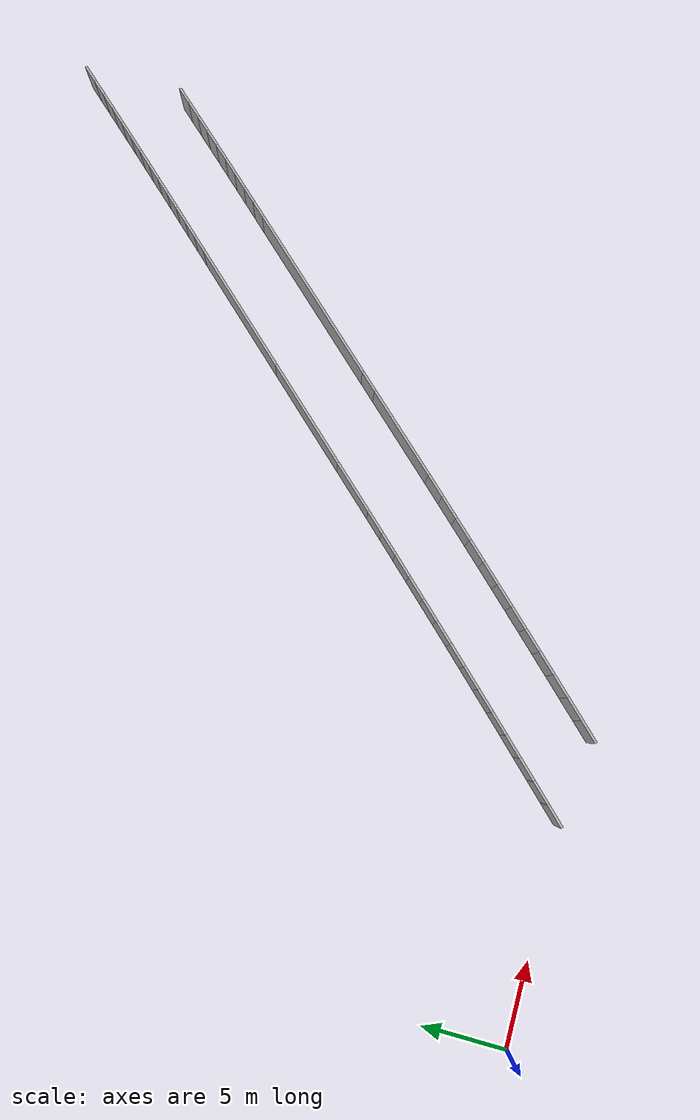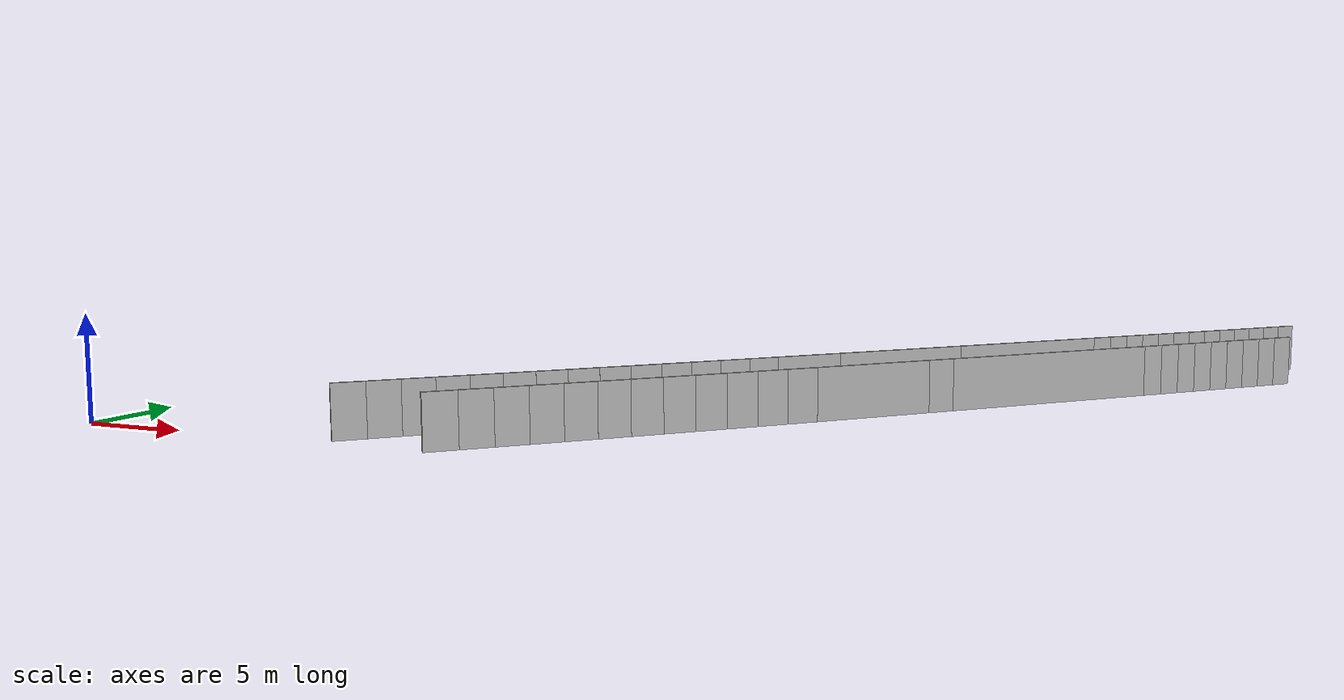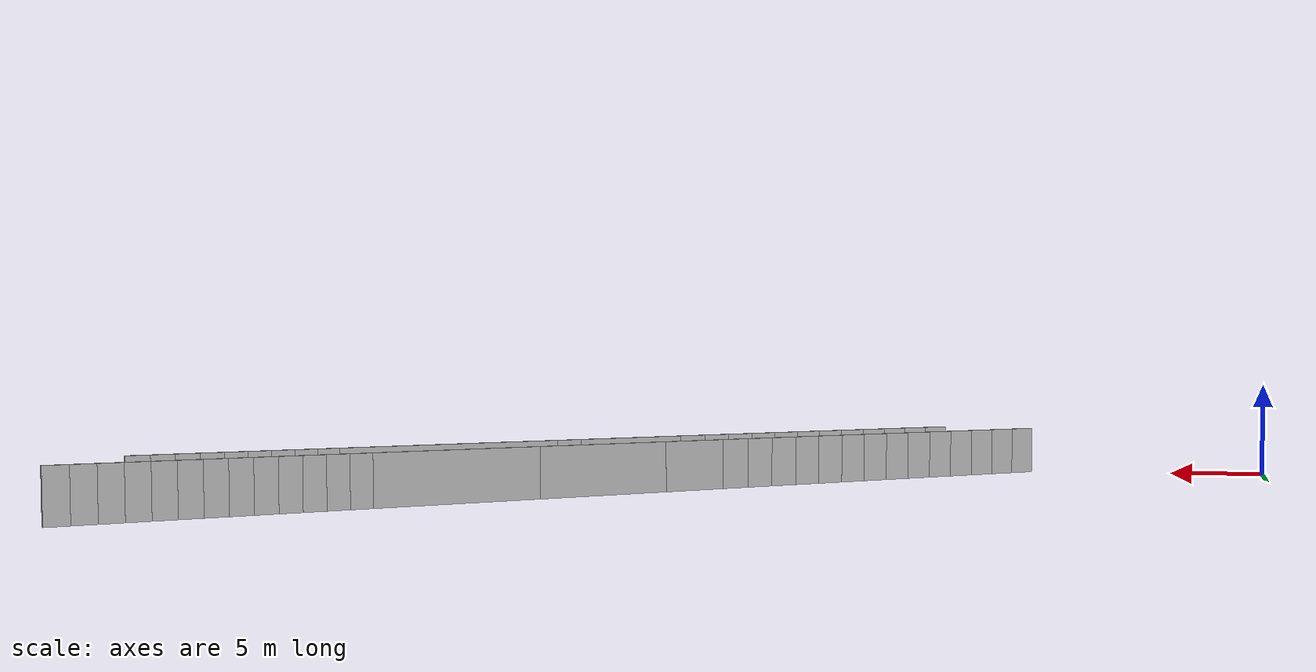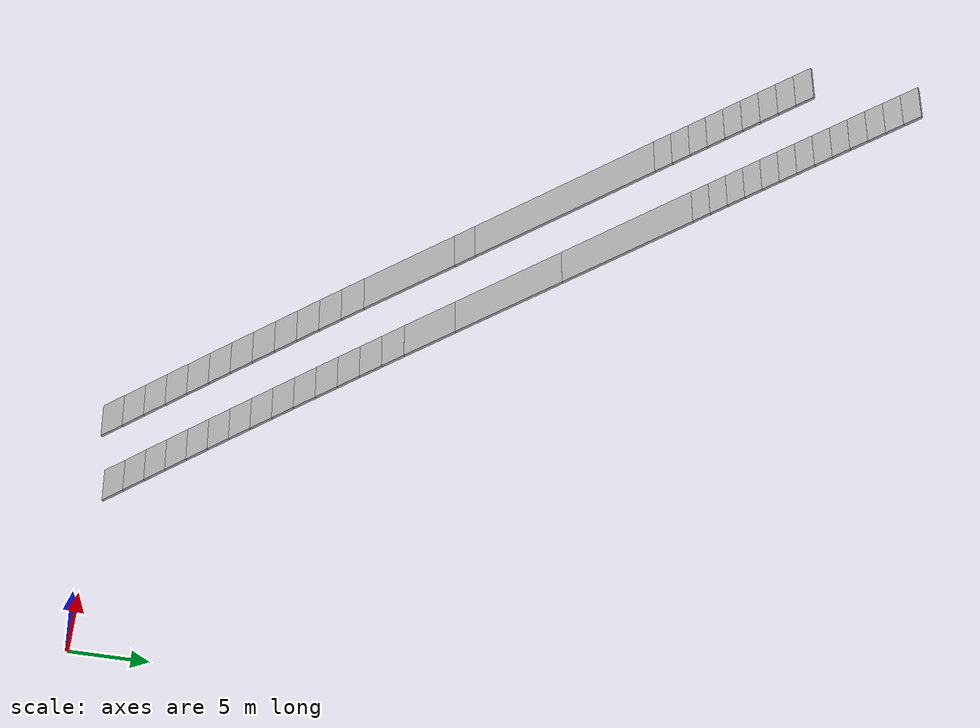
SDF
<?xml version="1.0" ?>
<sdf version="1.6">
  <model name="sps_3909">
    <pose frame="">0 0 0 0 -0 0</pose>
    <static>1</static>
    <self_collide>0</self_collide>
    <allow_auto_disable>0</allow_auto_disable>
    <link name="Wall243">
      <kinematic>0</kinematic>
      <gravity>1</gravity>
      <self_collide>0</self_collide>
      <collision name="collision">
        <geometry>
          <box>
            <size>8.3183 0.15 2.5</size>
          </box>
        </geometry>
        <pose frame="">0 0 0 0 -0 0</pose>
      </collision>
      <visual name="visual">
        <geometry>
          <box>
            <size>8.3183 0.15 2.5</size>
          </box>
        </geometry>
        <pose frame="">0 0 0 0 -0 0</pose>
        <cast_shadows>1</cast_shadows>
        <transparency>0.0</transparency>
      </visual>
      <pose frame="">37.3127 26.0104 1.25 0 0 -2.32351</pose>
    </link>
    <link name="Wall244">
      <kinematic>0</kinematic>
      <gravity>1</gravity>
      <self_collide>0</self_collide>
      <collision name="collision">
        <geometry>
          <box>
            <size>6.96301 0.15 2.5</size>
          </box>
        </geometry>
        <pose frame="">0 0 0 0 -0 0</pose>
      </collision>
      <visual name="visual">
        <geometry>
          <box>
            <size>6.96301 0.15 2.5</size>
          </box>
        </geometry>
        <pose frame="">0 0 0 0 -0 0</pose>
        <cast_shadows>1</cast_shadows>
        <transparency>0.0</transparency>
      </visual>
      <pose frame="">32.0894 20.434 1.25 0 0 -2.32351</pose>
    </link>
    <link name="Wall245">
      <kinematic>0</kinematic>
      <gravity>1</gravity>
      <self_collide>0</self_collide>
      <collision name="collision">
        <geometry>
          <box>
            <size>3.39064 0.15 2.5</size>
          </box>
        </geometry>
        <pose frame="">0 0 0 0 -0 0</pose>
      </collision>
      <visual name="visual">
        <geometry>
          <box>
            <size>3.39064 0.15 2.5</size>
          </box>
        </geometry>
        <pose frame="">0 0 0 0 -0 0</pose>
        <cast_shadows>1</cast_shadows>
        <transparency>0.0</transparency>
      </visual>
      <pose frame="">28.5504 16.6558 1.25 0 0 -2.32351</pose>
    </link>
    <link name="Wall309">
      <kinematic>0</kinematic>
      <gravity>1</gravity>
      <self_collide>0</self_collide>
      <collision name="collision">
        <geometry>
          <box>
            <size>5.94722 0.15 2.5</size>
          </box>
        </geometry>
        <pose frame="">0 0 0 0 -0 0</pose>
      </collision>
      <visual name="visual">
        <geometry>
          <box>
            <size>5.94722 0.15 2.5</size>
          </box>
        </geometry>
        <pose frame="">0 0 0 0 -0 0</pose>
        <cast_shadows>1</cast_shadows>
        <transparency>0.0</transparency>
      </visual>
      <pose frame="">32.4366 14.7482 1.25 0 -0 0.818091</pose>
    </link>
    <link name="Wall310">
      <kinematic>0</kinematic>
      <gravity>1</gravity>
      <self_collide>0</self_collide>
      <collision name="collision">
        <geometry>
          <box>
            <size>1.33544 0.15 2.5</size>
          </box>
        </geometry>
        <pose frame="">0 0 0 0 -0 0</pose>
      </collision>
      <visual name="visual">
        <geometry>
          <box>
            <size>1.33544 0.15 2.5</size>
          </box>
        </geometry>
        <pose frame="">0 0 0 0 -0 0</pose>
        <cast_shadows>1</cast_shadows>
        <transparency>0.0</transparency>
      </visual>
      <pose frame="">34.9259 17.4058 1.25 0 -0 0.818091</pose>
    </link>
    <link name="Wall311">
      <kinematic>0</kinematic>
      <gravity>1</gravity>
      <self_collide>0</self_collide>
      <collision name="collision">
        <geometry>
          <box>
            <size>11.3992 0.15 2.5</size>
          </box>
        </geometry>
        <pose frame="">0 0 0 0 -0 0</pose>
      </collision>
      <visual name="visual">
        <geometry>
          <box>
            <size>11.3992 0.15 2.5</size>
          </box>
        </geometry>
        <pose frame="">0 0 0 0 -0 0</pose>
        <cast_shadows>1</cast_shadows>
        <transparency>0.0</transparency>
      </visual>
      <pose frame="">39.2787 22.0529 1.25 0 -0 0.818091</pose>
    </link>
    <link name="Wall3377">
      <kinematic>0</kinematic>
      <gravity>1</gravity>
      <self_collide>0</self_collide>
      <collision name="collision">
        <geometry>
          <box>
            <size>1.07595 0.15 2.5</size>
          </box>
        </geometry>
        <pose frame="">0 0 0 0 -0 0</pose>
      </collision>
      <visual name="visual">
        <geometry>
          <box>
            <size>1.07595 0.15 2.5</size>
          </box>
        </geometry>
        <pose frame="">0 0 0 0 -0 0</pose>
        <cast_shadows>1</cast_shadows>
        <transparency>0.0</transparency>
      </visual>
      <pose frame="">40.5239 29.4385 1.25 0 -0 0.817935</pose>
    </link>
    <link name="Wall3378">
      <kinematic>0</kinematic>
      <gravity>1</gravity>
      <self_collide>0</self_collide>
      <collision name="collision">
        <geometry>
          <box>
            <size>1.07582 0.15 2.5</size>
          </box>
        </geometry>
        <pose frame="">0 0 0 0 -0 0</pose>
      </collision>
      <visual name="visual">
        <geometry>
          <box>
            <size>1.07582 0.15 2.5</size>
          </box>
        </geometry>
        <pose frame="">0 0 0 0 -0 0</pose>
        <cast_shadows>1</cast_shadows>
        <transparency>0.0</transparency>
      </visual>
      <pose frame="">41.259 30.2241 1.25 0 -0 0.819223</pose>
    </link>
    <link name="Wall3379">
      <kinematic>0</kinematic>
      <gravity>1</gravity>
      <self_collide>0</self_collide>
      <collision name="collision">
        <geometry>
          <box>
            <size>1.07616 0.15 2.5</size>
          </box>
        </geometry>
        <pose frame="">0 0 0 0 -0 0</pose>
      </collision>
      <visual name="visual">
        <geometry>
          <box>
            <size>1.07616 0.15 2.5</size>
          </box>
        </geometry>
        <pose frame="">0 0 0 0 -0 0</pose>
        <cast_shadows>1</cast_shadows>
        <transparency>0.0</transparency>
      </visual>
      <pose frame="">41.9932 31.0106 1.25 0 -0 0.820216</pose>
    </link>
    <link name="Wall3380">
      <kinematic>0</kinematic>
      <gravity>1</gravity>
      <self_collide>0</self_collide>
      <collision name="collision">
        <geometry>
          <box>
            <size>1.07594 0.15 2.5</size>
          </box>
        </geometry>
        <pose frame="">0 0 0 0 -0 0</pose>
      </collision>
      <visual name="visual">
        <geometry>
          <box>
            <size>1.07594 0.15 2.5</size>
          </box>
        </geometry>
        <pose frame="">0 0 0 0 -0 0</pose>
        <cast_shadows>1</cast_shadows>
        <transparency>0.0</transparency>
      </visual>
      <pose frame="">42.7268 31.7979 1.25 0 -0 0.821266</pose>
    </link>
    <link name="Wall3381">
      <kinematic>0</kinematic>
      <gravity>1</gravity>
      <self_collide>0</self_collide>
      <collision name="collision">
        <geometry>
          <box>
            <size>1.07598 0.15 2.5</size>
          </box>
        </geometry>
        <pose frame="">0 0 0 0 -0 0</pose>
      </collision>
      <visual name="visual">
        <geometry>
          <box>
            <size>1.07598 0.15 2.5</size>
          </box>
        </geometry>
        <pose frame="">0 0 0 0 -0 0</pose>
        <cast_shadows>1</cast_shadows>
        <transparency>0.0</transparency>
      </visual>
      <pose frame="">43.4594 32.5859 1.25 0 -0 0.822389</pose>
    </link>
    <link name="Wall3382">
      <kinematic>0</kinematic>
      <gravity>1</gravity>
      <self_collide>0</self_collide>
      <collision name="collision">
        <geometry>
          <box>
            <size>1.07599 0.15 2.5</size>
          </box>
        </geometry>
        <pose frame="">0 0 0 0 -0 0</pose>
      </collision>
      <visual name="visual">
        <geometry>
          <box>
            <size>1.07599 0.15 2.5</size>
          </box>
        </geometry>
        <pose frame="">0 0 0 0 -0 0</pose>
        <cast_shadows>1</cast_shadows>
        <transparency>0.0</transparency>
      </visual>
      <pose frame="">44.1911 33.3748 1.25 0 -0 0.823633</pose>
    </link>
    <link name="Wall3383">
      <kinematic>0</kinematic>
      <gravity>1</gravity>
      <self_collide>0</self_collide>
      <collision name="collision">
        <geometry>
          <box>
            <size>1.07608 0.15 2.5</size>
          </box>
        </geometry>
        <pose frame="">0 0 0 0 -0 0</pose>
      </collision>
      <visual name="visual">
        <geometry>
          <box>
            <size>1.07608 0.15 2.5</size>
          </box>
        </geometry>
        <pose frame="">0 0 0 0 -0 0</pose>
        <cast_shadows>1</cast_shadows>
        <transparency>0.0</transparency>
      </visual>
      <pose frame="">44.9219 34.1646 1.25 0 -0 0.824713</pose>
    </link>
    <link name="Wall3384">
      <kinematic>0</kinematic>
      <gravity>1</gravity>
      <self_collide>0</self_collide>
      <collision name="collision">
        <geometry>
          <box>
            <size>1.07596 0.15 2.5</size>
          </box>
        </geometry>
        <pose frame="">0 0 0 0 -0 0</pose>
      </collision>
      <visual name="visual">
        <geometry>
          <box>
            <size>1.07596 0.15 2.5</size>
          </box>
        </geometry>
        <pose frame="">0 0 0 0 -0 0</pose>
        <cast_shadows>1</cast_shadows>
        <transparency>0.0</transparency>
      </visual>
      <pose frame="">45.6518 34.9552 1.25 0 -0 0.825922</pose>
    </link>
    <link name="Wall3385">
      <kinematic>0</kinematic>
      <gravity>1</gravity>
      <self_collide>0</self_collide>
      <collision name="collision">
        <geometry>
          <box>
            <size>1.07584 0.15 2.5</size>
          </box>
        </geometry>
        <pose frame="">0 0 0 0 -0 0</pose>
      </collision>
      <visual name="visual">
        <geometry>
          <box>
            <size>1.07584 0.15 2.5</size>
          </box>
        </geometry>
        <pose frame="">0 0 0 0 -0 0</pose>
        <cast_shadows>1</cast_shadows>
        <transparency>0.0</transparency>
      </visual>
      <pose frame="">46.3806 35.7466 1.25 0 -0 0.827051</pose>
    </link>
    <link name="Wall3386">
      <kinematic>0</kinematic>
      <gravity>1</gravity>
      <self_collide>0</self_collide>
      <collision name="collision">
        <geometry>
          <box>
            <size>1.07609 0.15 2.5</size>
          </box>
        </geometry>
        <pose frame="">0 0 0 0 -0 0</pose>
      </collision>
      <visual name="visual">
        <geometry>
          <box>
            <size>1.07609 0.15 2.5</size>
          </box>
        </geometry>
        <pose frame="">0 0 0 0 -0 0</pose>
        <cast_shadows>1</cast_shadows>
        <transparency>0.0</transparency>
      </visual>
      <pose frame="">47.1088 36.5388 1.25 0 -0 0.827964</pose>
    </link>
    <link name="Wall3387">
      <kinematic>0</kinematic>
      <gravity>1</gravity>
      <self_collide>0</self_collide>
      <collision name="collision">
        <geometry>
          <box>
            <size>1.07616 0.15 2.5</size>
          </box>
        </geometry>
        <pose frame="">0 0 0 0 -0 0</pose>
      </collision>
      <visual name="visual">
        <geometry>
          <box>
            <size>1.07616 0.15 2.5</size>
          </box>
        </geometry>
        <pose frame="">0 0 0 0 -0 0</pose>
        <cast_shadows>1</cast_shadows>
        <transparency>0.0</transparency>
      </visual>
      <pose frame="">47.8361 37.3319 1.25 0 -0 0.829326</pose>
    </link>
    <link name="Wall3388">
      <kinematic>0</kinematic>
      <gravity>1</gravity>
      <self_collide>0</self_collide>
      <collision name="collision">
        <geometry>
          <box>
            <size>1.07586 0.15 2.5</size>
          </box>
        </geometry>
        <pose frame="">0 0 0 0 -0 0</pose>
      </collision>
      <visual name="visual">
        <geometry>
          <box>
            <size>1.07586 0.15 2.5</size>
          </box>
        </geometry>
        <pose frame="">0 0 0 0 -0 0</pose>
        <cast_shadows>1</cast_shadows>
        <transparency>0.0</transparency>
      </visual>
      <pose frame="">48.5624 38.1258 1.25 0 -0 0.830382</pose>
    </link>
    <link name="Wall3389">
      <kinematic>0</kinematic>
      <gravity>1</gravity>
      <self_collide>0</self_collide>
      <collision name="collision">
        <geometry>
          <box>
            <size>1.07605 0.15 2.5</size>
          </box>
        </geometry>
        <pose frame="">0 0 0 0 -0 0</pose>
      </collision>
      <visual name="visual">
        <geometry>
          <box>
            <size>1.07605 0.15 2.5</size>
          </box>
        </geometry>
        <pose frame="">0 0 0 0 -0 0</pose>
        <cast_shadows>1</cast_shadows>
        <transparency>0.0</transparency>
      </visual>
      <pose frame="">49.2877 38.9205 1.25 0 -0 0.831539</pose>
    </link>
    <link name="Wall4165">
      <kinematic>0</kinematic>
      <gravity>1</gravity>
      <self_collide>0</self_collide>
      <collision name="collision">
        <geometry>
          <box>
            <size>1.4966 0.15 2.5</size>
          </box>
        </geometry>
        <pose frame="">0 0 0 0 -0 0</pose>
      </collision>
      <visual name="visual">
        <geometry>
          <box>
            <size>1.4966 0.15 2.5</size>
          </box>
        </geometry>
        <pose frame="">0 0 0 0 -0 0</pose>
        <cast_shadows>1</cast_shadows>
        <transparency>0.0</transparency>
      </visual>
      <pose frame="">13.3711 0.872878 1.25 0 -0 0.793127</pose>
    </link>
    <link name="Wall4166">
      <kinematic>0</kinematic>
      <gravity>1</gravity>
      <self_collide>0</self_collide>
      <collision name="collision">
        <geometry>
          <box>
            <size>1.49641 0.15 2.5</size>
          </box>
        </geometry>
        <pose frame="">0 0 0 0 -0 0</pose>
      </collision>
      <visual name="visual">
        <geometry>
          <box>
            <size>1.49641 0.15 2.5</size>
          </box>
        </geometry>
        <pose frame="">0 0 0 0 -0 0</pose>
        <cast_shadows>1</cast_shadows>
        <transparency>0.0</transparency>
      </visual>
      <pose frame="">14.4202 1.94008 1.25 0 -0 0.794772</pose>
    </link>
    <link name="Wall4167">
      <kinematic>0</kinematic>
      <gravity>1</gravity>
      <self_collide>0</self_collide>
      <collision name="collision">
        <geometry>
          <box>
            <size>1.49665 0.15 2.5</size>
          </box>
        </geometry>
        <pose frame="">0 0 0 0 -0 0</pose>
      </collision>
      <visual name="visual">
        <geometry>
          <box>
            <size>1.49665 0.15 2.5</size>
          </box>
        </geometry>
        <pose frame="">0 0 0 0 -0 0</pose>
        <cast_shadows>1</cast_shadows>
        <transparency>0.0</transparency>
      </visual>
      <pose frame="">15.4676 3.00889 1.25 0 -0 0.796183</pose>
    </link>
    <link name="Wall4168">
      <kinematic>0</kinematic>
      <gravity>1</gravity>
      <self_collide>0</self_collide>
      <collision name="collision">
        <geometry>
          <box>
            <size>1.49646 0.15 2.5</size>
          </box>
        </geometry>
        <pose frame="">0 0 0 0 -0 0</pose>
      </collision>
      <visual name="visual">
        <geometry>
          <box>
            <size>1.49646 0.15 2.5</size>
          </box>
        </geometry>
        <pose frame="">0 0 0 0 -0 0</pose>
        <cast_shadows>1</cast_shadows>
        <transparency>0.0</transparency>
      </visual>
      <pose frame="">16.5134 4.07939 1.25 0 -0 0.797944</pose>
    </link>
    <link name="Wall4169">
      <kinematic>0</kinematic>
      <gravity>1</gravity>
      <self_collide>0</self_collide>
      <collision name="collision">
        <geometry>
          <box>
            <size>1.49666 0.15 2.5</size>
          </box>
        </geometry>
        <pose frame="">0 0 0 0 -0 0</pose>
      </collision>
      <visual name="visual">
        <geometry>
          <box>
            <size>1.49666 0.15 2.5</size>
          </box>
        </geometry>
        <pose frame="">0 0 0 0 -0 0</pose>
        <cast_shadows>1</cast_shadows>
        <transparency>0.0</transparency>
      </visual>
      <pose frame="">17.5575 5.15156 1.25 0 -0 0.799384</pose>
    </link>
    <link name="Wall4170">
      <kinematic>0</kinematic>
      <gravity>1</gravity>
      <self_collide>0</self_collide>
      <collision name="collision">
        <geometry>
          <box>
            <size>1.49644 0.15 2.5</size>
          </box>
        </geometry>
        <pose frame="">0 0 0 0 -0 0</pose>
      </collision>
      <visual name="visual">
        <geometry>
          <box>
            <size>1.49644 0.15 2.5</size>
          </box>
        </geometry>
        <pose frame="">0 0 0 0 -0 0</pose>
        <cast_shadows>1</cast_shadows>
        <transparency>0.0</transparency>
      </visual>
      <pose frame="">18.5999 6.22539 1.25 0 -0 0.801117</pose>
    </link>
    <link name="Wall4171">
      <kinematic>0</kinematic>
      <gravity>1</gravity>
      <self_collide>0</self_collide>
      <collision name="collision">
        <geometry>
          <box>
            <size>1.49648 0.15 2.5</size>
          </box>
        </geometry>
        <pose frame="">0 0 0 0 -0 0</pose>
      </collision>
      <visual name="visual">
        <geometry>
          <box>
            <size>1.49648 0.15 2.5</size>
          </box>
        </geometry>
        <pose frame="">0 0 0 0 -0 0</pose>
        <cast_shadows>1</cast_shadows>
        <transparency>0.0</transparency>
      </visual>
      <pose frame="">19.6406 7.3008 1.25 0 -0 0.802559</pose>
    </link>
    <link name="Wall4172">
      <kinematic>0</kinematic>
      <gravity>1</gravity>
      <self_collide>0</self_collide>
      <collision name="collision">
        <geometry>
          <box>
            <size>1.49648 0.15 2.5</size>
          </box>
        </geometry>
        <pose frame="">0 0 0 0 -0 0</pose>
      </collision>
      <visual name="visual">
        <geometry>
          <box>
            <size>1.49648 0.15 2.5</size>
          </box>
        </geometry>
        <pose frame="">0 0 0 0 -0 0</pose>
        <cast_shadows>1</cast_shadows>
        <transparency>0.0</transparency>
      </visual>
      <pose frame="">20.6796 8.37779 1.25 0 -0 0.804145</pose>
    </link>
    <link name="Wall4173">
      <kinematic>0</kinematic>
      <gravity>1</gravity>
      <self_collide>0</self_collide>
      <collision name="collision">
        <geometry>
          <box>
            <size>1.49657 0.15 2.5</size>
          </box>
        </geometry>
        <pose frame="">0 0 0 0 -0 0</pose>
      </collision>
      <visual name="visual">
        <geometry>
          <box>
            <size>1.49657 0.15 2.5</size>
          </box>
        </geometry>
        <pose frame="">0 0 0 0 -0 0</pose>
        <cast_shadows>1</cast_shadows>
        <transparency>0.0</transparency>
      </visual>
      <pose frame="">21.7168 9.4565 1.25 0 -0 0.805788</pose>
    </link>
    <link name="Wall4174">
      <kinematic>0</kinematic>
      <gravity>1</gravity>
      <self_collide>0</self_collide>
      <collision name="collision">
        <geometry>
          <box>
            <size>1.49657 0.15 2.5</size>
          </box>
        </geometry>
        <pose frame="">0 0 0 0 -0 0</pose>
      </collision>
      <visual name="visual">
        <geometry>
          <box>
            <size>1.49657 0.15 2.5</size>
          </box>
        </geometry>
        <pose frame="">0 0 0 0 -0 0</pose>
        <cast_shadows>1</cast_shadows>
        <transparency>0.0</transparency>
      </visual>
      <pose frame="">22.7525 10.5369 1.25 0 -0 0.807317</pose>
    </link>
    <link name="Wall4175">
      <kinematic>0</kinematic>
      <gravity>1</gravity>
      <self_collide>0</self_collide>
      <collision name="collision">
        <geometry>
          <box>
            <size>1.49668 0.15 2.5</size>
          </box>
        </geometry>
        <pose frame="">0 0 0 0 -0 0</pose>
      </collision>
      <visual name="visual">
        <geometry>
          <box>
            <size>1.49668 0.15 2.5</size>
          </box>
        </geometry>
        <pose frame="">0 0 0 0 -0 0</pose>
        <cast_shadows>1</cast_shadows>
        <transparency>0.0</transparency>
      </visual>
      <pose frame="">23.7864 11.619 1.25 0 -0 0.809017</pose>
    </link>
    <link name="Wall4176">
      <kinematic>0</kinematic>
      <gravity>1</gravity>
      <self_collide>0</self_collide>
      <collision name="collision">
        <geometry>
          <box>
            <size>1.49643 0.15 2.5</size>
          </box>
        </geometry>
        <pose frame="">0 0 0 0 -0 0</pose>
      </collision>
      <visual name="visual">
        <geometry>
          <box>
            <size>1.49643 0.15 2.5</size>
          </box>
        </geometry>
        <pose frame="">0 0 0 0 -0 0</pose>
        <cast_shadows>1</cast_shadows>
        <transparency>0.0</transparency>
      </visual>
      <pose frame="">24.8185 12.7027 1.25 0 -0 0.81055</pose>
    </link>
    <link name="Wall4177">
      <kinematic>0</kinematic>
      <gravity>1</gravity>
      <self_collide>0</self_collide>
      <collision name="collision">
        <geometry>
          <box>
            <size>1.49632 0.15 2.5</size>
          </box>
        </geometry>
        <pose frame="">0 0 0 0 -0 0</pose>
      </collision>
      <visual name="visual">
        <geometry>
          <box>
            <size>1.49632 0.15 2.5</size>
          </box>
        </geometry>
        <pose frame="">0 0 0 0 -0 0</pose>
        <cast_shadows>1</cast_shadows>
        <transparency>0.0</transparency>
      </visual>
      <pose frame="">25.8487 13.7879 1.25 0 -0 0.812168</pose>
    </link>
    <link name="Wall4178">
      <kinematic>0</kinematic>
      <gravity>1</gravity>
      <self_collide>0</self_collide>
      <collision name="collision">
        <geometry>
          <box>
            <size>1.49655 0.15 2.5</size>
          </box>
        </geometry>
        <pose frame="">0 0 0 0 -0 0</pose>
      </collision>
      <visual name="visual">
        <geometry>
          <box>
            <size>1.49655 0.15 2.5</size>
          </box>
        </geometry>
        <pose frame="">0 0 0 0 -0 0</pose>
        <cast_shadows>1</cast_shadows>
        <transparency>0.0</transparency>
      </visual>
      <pose frame="">26.8774 14.8747 1.25 0 -0 0.813548</pose>
    </link>
    <link name="Wall4179">
      <kinematic>0</kinematic>
      <gravity>1</gravity>
      <self_collide>0</self_collide>
      <collision name="collision">
        <geometry>
          <box>
            <size>1.08074 0.15 2.5</size>
          </box>
        </geometry>
        <pose frame="">0 0 0 0 -0 0</pose>
      </collision>
      <visual name="visual">
        <geometry>
          <box>
            <size>1.08074 0.15 2.5</size>
          </box>
        </geometry>
        <pose frame="">0 0 0 0 -0 0</pose>
        <cast_shadows>1</cast_shadows>
        <transparency>0.0</transparency>
      </visual>
      <pose frame="">43.5446 26.607 1.25 0 -0 0.81783</pose>
    </link>
    <link name="Wall4180">
      <kinematic>0</kinematic>
      <gravity>1</gravity>
      <self_collide>0</self_collide>
      <collision name="collision">
        <geometry>
          <box>
            <size>1.08078 0.15 2.5</size>
          </box>
        </geometry>
        <pose frame="">0 0 0 0 -0 0</pose>
      </collision>
      <visual name="visual">
        <geometry>
          <box>
            <size>1.08078 0.15 2.5</size>
          </box>
        </geometry>
        <pose frame="">0 0 0 0 -0 0</pose>
        <cast_shadows>1</cast_shadows>
        <transparency>0.0</transparency>
      </visual>
      <pose frame="">44.2831 27.3961 1.25 0 -0 0.819187</pose>
    </link>
    <link name="Wall4181">
      <kinematic>0</kinematic>
      <gravity>1</gravity>
      <self_collide>0</self_collide>
      <collision name="collision">
        <geometry>
          <box>
            <size>1.08064 0.15 2.5</size>
          </box>
        </geometry>
        <pose frame="">0 0 0 0 -0 0</pose>
      </collision>
      <visual name="visual">
        <geometry>
          <box>
            <size>1.08064 0.15 2.5</size>
          </box>
        </geometry>
        <pose frame="">0 0 0 0 -0 0</pose>
        <cast_shadows>1</cast_shadows>
        <transparency>0.0</transparency>
      </visual>
      <pose frame="">45.0207 28.186 1.25 0 -0 0.820071</pose>
    </link>
    <link name="Wall4182">
      <kinematic>0</kinematic>
      <gravity>1</gravity>
      <self_collide>0</self_collide>
      <collision name="collision">
        <geometry>
          <box>
            <size>1.08086 0.15 2.5</size>
          </box>
        </geometry>
        <pose frame="">0 0 0 0 -0 0</pose>
      </collision>
      <visual name="visual">
        <geometry>
          <box>
            <size>1.08086 0.15 2.5</size>
          </box>
        </geometry>
        <pose frame="">0 0 0 0 -0 0</pose>
        <cast_shadows>1</cast_shadows>
        <transparency>0.0</transparency>
      </visual>
      <pose frame="">45.7574 28.9767 1.25 0 -0 0.821263</pose>
    </link>
    <link name="Wall4183">
      <kinematic>0</kinematic>
      <gravity>1</gravity>
      <self_collide>0</self_collide>
      <collision name="collision">
        <geometry>
          <box>
            <size>1.08082 0.15 2.5</size>
          </box>
        </geometry>
        <pose frame="">0 0 0 0 -0 0</pose>
      </collision>
      <visual name="visual">
        <geometry>
          <box>
            <size>1.08082 0.15 2.5</size>
          </box>
        </geometry>
        <pose frame="">0 0 0 0 -0 0</pose>
        <cast_shadows>1</cast_shadows>
        <transparency>0.0</transparency>
      </visual>
      <pose frame="">46.4933 29.7683 1.25 0 -0 0.822463</pose>
    </link>
    <link name="Wall4184">
      <kinematic>0</kinematic>
      <gravity>1</gravity>
      <self_collide>0</self_collide>
      <collision name="collision">
        <geometry>
          <box>
            <size>1.0807 0.15 2.5</size>
          </box>
        </geometry>
        <pose frame="">0 0 0 0 -0 0</pose>
      </collision>
      <visual name="visual">
        <geometry>
          <box>
            <size>1.0807 0.15 2.5</size>
          </box>
        </geometry>
        <pose frame="">0 0 0 0 -0 0</pose>
        <cast_shadows>1</cast_shadows>
        <transparency>0.0</transparency>
      </visual>
      <pose frame="">47.2283 30.5607 1.25 0 -0 0.823586</pose>
    </link>
    <link name="Wall4185">
      <kinematic>0</kinematic>
      <gravity>1</gravity>
      <self_collide>0</self_collide>
      <collision name="collision">
        <geometry>
          <box>
            <size>1.08057 0.15 2.5</size>
          </box>
        </geometry>
        <pose frame="">0 0 0 0 -0 0</pose>
      </collision>
      <visual name="visual">
        <geometry>
          <box>
            <size>1.08057 0.15 2.5</size>
          </box>
        </geometry>
        <pose frame="">0 0 0 0 -0 0</pose>
        <cast_shadows>1</cast_shadows>
        <transparency>0.0</transparency>
      </visual>
      <pose frame="">47.9622 31.3539 1.25 0 -0 0.824789</pose>
    </link>
    <link name="Wall4186">
      <kinematic>0</kinematic>
      <gravity>1</gravity>
      <self_collide>0</self_collide>
      <collision name="collision">
        <geometry>
          <box>
            <size>1.08079 0.15 2.5</size>
          </box>
        </geometry>
        <pose frame="">0 0 0 0 -0 0</pose>
      </collision>
      <visual name="visual">
        <geometry>
          <box>
            <size>1.08079 0.15 2.5</size>
          </box>
        </geometry>
        <pose frame="">0 0 0 0 -0 0</pose>
        <cast_shadows>1</cast_shadows>
        <transparency>0.0</transparency>
      </visual>
      <pose frame="">48.6953 32.1479 1.25 0 -0 0.825741</pose>
    </link>
    <link name="Wall4187">
      <kinematic>0</kinematic>
      <gravity>1</gravity>
      <self_collide>0</self_collide>
      <collision name="collision">
        <geometry>
          <box>
            <size>1.08063 0.15 2.5</size>
          </box>
        </geometry>
        <pose frame="">0 0 0 0 -0 0</pose>
      </collision>
      <visual name="visual">
        <geometry>
          <box>
            <size>1.08063 0.15 2.5</size>
          </box>
        </geometry>
        <pose frame="">0 0 0 0 -0 0</pose>
        <cast_shadows>1</cast_shadows>
        <transparency>0.0</transparency>
      </visual>
      <pose frame="">49.4275 32.9428 1.25 0 -0 0.827145</pose>
    </link>
    <link name="Wall7942">
      <kinematic>0</kinematic>
      <gravity>1</gravity>
      <self_collide>0</self_collide>
      <collision name="collision">
        <geometry>
          <box>
            <size>1.50312 0.15 2.5</size>
          </box>
        </geometry>
        <pose frame="">0 0 0 0 -0 0</pose>
      </collision>
      <visual name="visual">
        <geometry>
          <box>
            <size>1.50312 0.15 2.5</size>
          </box>
        </geometry>
        <pose frame="">0 0 0 0 -0 0</pose>
        <cast_shadows>1</cast_shadows>
        <transparency>0.0</transparency>
      </visual>
      <pose frame="">18.4277 0.113692 1.25 0 -0 0.796309</pose>
    </link>
    <link name="Wall7943">
      <kinematic>0</kinematic>
      <gravity>1</gravity>
      <self_collide>0</self_collide>
      <collision name="collision">
        <geometry>
          <box>
            <size>1.50311 0.15 2.5</size>
          </box>
        </geometry>
        <pose frame="">0 0 0 0 -0 0</pose>
      </collision>
      <visual name="visual">
        <geometry>
          <box>
            <size>1.50311 0.15 2.5</size>
          </box>
        </geometry>
        <pose frame="">0 0 0 0 -0 0</pose>
        <cast_shadows>1</cast_shadows>
        <transparency>0.0</transparency>
      </visual>
      <pose frame="">19.478 1.18889 1.25 0 -0 0.797831</pose>
    </link>
    <link name="Wall7944">
      <kinematic>0</kinematic>
      <gravity>1</gravity>
      <self_collide>0</self_collide>
      <collision name="collision">
        <geometry>
          <box>
            <size>1.50323 0.15 2.5</size>
          </box>
        </geometry>
        <pose frame="">0 0 0 0 -0 0</pose>
      </collision>
      <visual name="visual">
        <geometry>
          <box>
            <size>1.50323 0.15 2.5</size>
          </box>
        </geometry>
        <pose frame="">0 0 0 0 -0 0</pose>
        <cast_shadows>1</cast_shadows>
        <transparency>0.0</transparency>
      </visual>
      <pose frame="">20.5268 2.26579 1.25 0 -0 0.799495</pose>
    </link>
    <link name="Wall7945">
      <kinematic>0</kinematic>
      <gravity>1</gravity>
      <self_collide>0</self_collide>
      <collision name="collision">
        <geometry>
          <box>
            <size>1.50322 0.15 2.5</size>
          </box>
        </geometry>
        <pose frame="">0 0 0 0 -0 0</pose>
      </collision>
      <visual name="visual">
        <geometry>
          <box>
            <size>1.50322 0.15 2.5</size>
          </box>
        </geometry>
        <pose frame="">0 0 0 0 -0 0</pose>
        <cast_shadows>1</cast_shadows>
        <transparency>0.0</transparency>
      </visual>
      <pose frame="">21.5738 3.34441 1.25 0 -0 0.801017</pose>
    </link>
    <link name="Wall7946">
      <kinematic>0</kinematic>
      <gravity>1</gravity>
      <self_collide>0</self_collide>
      <collision name="collision">
        <geometry>
          <box>
            <size>1.50308 0.15 2.5</size>
          </box>
        </geometry>
        <pose frame="">0 0 0 0 -0 0</pose>
      </collision>
      <visual name="visual">
        <geometry>
          <box>
            <size>1.50308 0.15 2.5</size>
          </box>
        </geometry>
        <pose frame="">0 0 0 0 -0 0</pose>
        <cast_shadows>1</cast_shadows>
        <transparency>0.0</transparency>
      </visual>
      <pose frame="">22.6191 4.42461 1.25 0 -0 0.802627</pose>
    </link>
    <link name="Wall7947">
      <kinematic>0</kinematic>
      <gravity>1</gravity>
      <self_collide>0</self_collide>
      <collision name="collision">
        <geometry>
          <box>
            <size>1.50313 0.15 2.5</size>
          </box>
        </geometry>
        <pose frame="">0 0 0 0 -0 0</pose>
      </collision>
      <visual name="visual">
        <geometry>
          <box>
            <size>1.50313 0.15 2.5</size>
          </box>
        </geometry>
        <pose frame="">0 0 0 0 -0 0</pose>
        <cast_shadows>1</cast_shadows>
        <transparency>0.0</transparency>
      </visual>
      <pose frame="">23.6626 5.50648 1.25 0 -0 0.804292</pose>
    </link>
    <link name="Wall7948">
      <kinematic>0</kinematic>
      <gravity>1</gravity>
      <self_collide>0</self_collide>
      <collision name="collision">
        <geometry>
          <box>
            <size>1.50309 0.15 2.5</size>
          </box>
        </geometry>
        <pose frame="">0 0 0 0 -0 0</pose>
      </collision>
      <visual name="visual">
        <geometry>
          <box>
            <size>1.50309 0.15 2.5</size>
          </box>
        </geometry>
        <pose frame="">0 0 0 0 -0 0</pose>
        <cast_shadows>1</cast_shadows>
        <transparency>0.0</transparency>
      </visual>
      <pose frame="">24.7044 6.58998 1.25 0 -0 0.805729</pose>
    </link>
    <link name="Wall7949">
      <kinematic>0</kinematic>
      <gravity>1</gravity>
      <self_collide>0</self_collide>
      <collision name="collision">
        <geometry>
          <box>
            <size>1.50296 0.15 2.5</size>
          </box>
        </geometry>
        <pose frame="">0 0 0 0 -0 0</pose>
      </collision>
      <visual name="visual">
        <geometry>
          <box>
            <size>1.50296 0.15 2.5</size>
          </box>
        </geometry>
        <pose frame="">0 0 0 0 -0 0</pose>
        <cast_shadows>1</cast_shadows>
        <transparency>0.0</transparency>
      </visual>
      <pose frame="">25.7445 7.675 1.25 0 -0 0.807339</pose>
    </link>
    <link name="Wall7950">
      <kinematic>0</kinematic>
      <gravity>1</gravity>
      <self_collide>0</self_collide>
      <collision name="collision">
        <geometry>
          <box>
            <size>1.50302 0.15 2.5</size>
          </box>
        </geometry>
        <pose frame="">0 0 0 0 -0 0</pose>
      </collision>
      <visual name="visual">
        <geometry>
          <box>
            <size>1.50302 0.15 2.5</size>
          </box>
        </geometry>
        <pose frame="">0 0 0 0 -0 0</pose>
        <cast_shadows>1</cast_shadows>
        <transparency>0.0</transparency>
      </visual>
      <pose frame="">26.7828 8.7617 1.25 0 -0 0.809004</pose>
    </link>
    <link name="Wall7951">
      <kinematic>0</kinematic>
      <gravity>1</gravity>
      <self_collide>0</self_collide>
      <collision name="collision">
        <geometry>
          <box>
            <size>1.50303 0.15 2.5</size>
          </box>
        </geometry>
        <pose frame="">0 0 0 0 -0 0</pose>
      </collision>
      <visual name="visual">
        <geometry>
          <box>
            <size>1.50303 0.15 2.5</size>
          </box>
        </geometry>
        <pose frame="">0 0 0 0 -0 0</pose>
        <cast_shadows>1</cast_shadows>
        <transparency>0.0</transparency>
      </visual>
      <pose frame="">27.8194 9.85008 1.25 0 -0 0.810526</pose>
    </link>
    <link name="Wall7952">
      <kinematic>0</kinematic>
      <gravity>1</gravity>
      <self_collide>0</self_collide>
      <collision name="collision">
        <geometry>
          <box>
            <size>1.50318 0.15 2.5</size>
          </box>
        </geometry>
        <pose frame="">0 0 0 0 -0 0</pose>
      </collision>
      <visual name="visual">
        <geometry>
          <box>
            <size>1.50318 0.15 2.5</size>
          </box>
        </geometry>
        <pose frame="">0 0 0 0 -0 0</pose>
        <cast_shadows>1</cast_shadows>
        <transparency>0.0</transparency>
      </visual>
      <pose frame="">28.8544 10.9401 1.25 0 -0 0.812017</pose>
    </link>
    <link name="Wall7953">
      <kinematic>0</kinematic>
      <gravity>1</gravity>
      <self_collide>0</self_collide>
      <collision name="collision">
        <geometry>
          <box>
            <size>1.50303 0.15 2.5</size>
          </box>
        </geometry>
        <pose frame="">0 0 0 0 -0 0</pose>
      </collision>
      <visual name="visual">
        <geometry>
          <box>
            <size>1.50303 0.15 2.5</size>
          </box>
        </geometry>
        <pose frame="">0 0 0 0 -0 0</pose>
        <cast_shadows>1</cast_shadows>
        <transparency>0.0</transparency>
      </visual>
      <pose frame="">29.8877 12.0317 1.25 0 -0 0.813657</pose>
    </link>
  </model>
</sdf>
